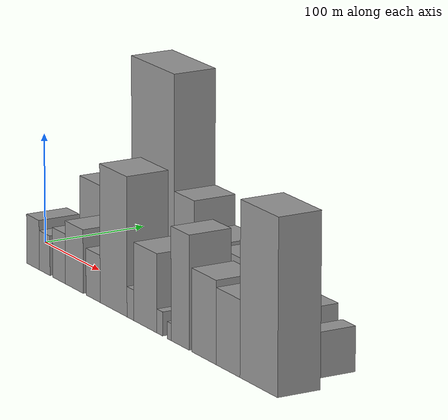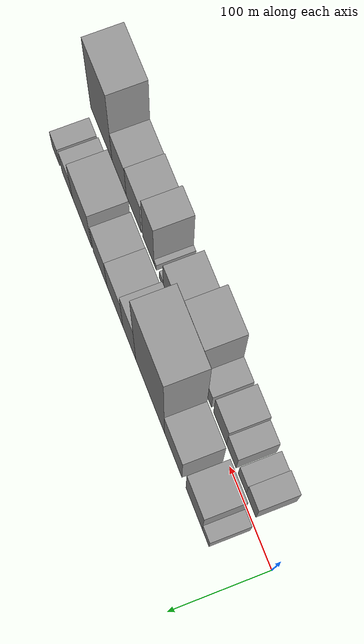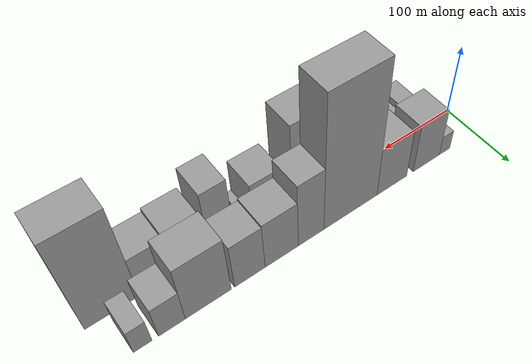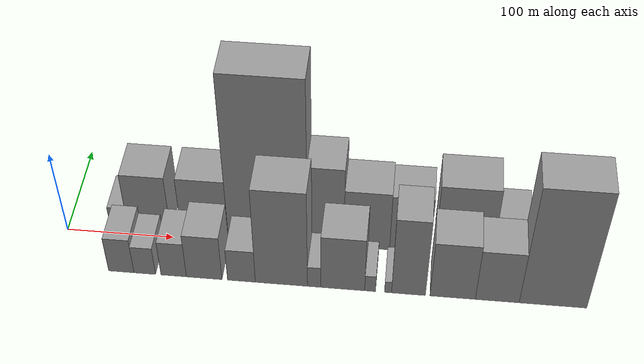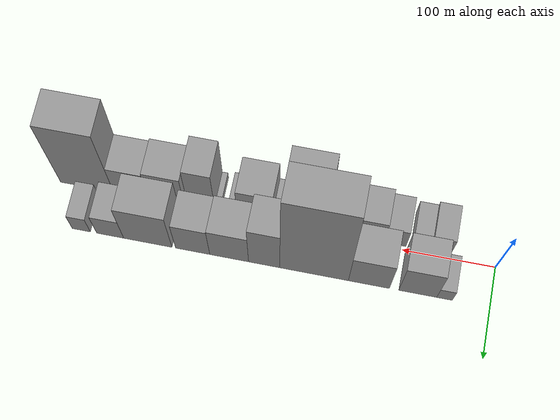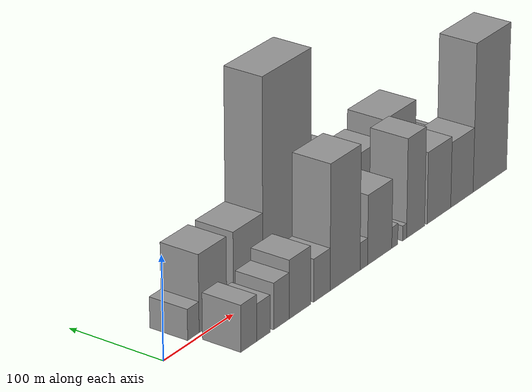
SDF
<sdf version="1.6">
 <world name="default">
  <scene>
   <sky><clouds><speed>12</speed></clouds></sky>
   <ambient>0.4 0.4 0.4 1</ambient>
   <background>0.7 0.7 0.7 1</background>
   <shadows>1</shadows>
  </scene>
  <gravity>0 0 -9.8066</gravity>
  <magnetic_field>6e-06 2.3e-05 -4.2e-05</magnetic_field>
  <physics default="0" name="default_physics" type="ode">
   <ode>
    <solver>
     <type>quick</type>
     <iters>10</iters>
     <sor>1.0</sor>
     <use_dynamic_moi_rescaling>0</use_dynamic_moi_rescaling>
    </solver>
    <constraints>
     <cfm>0</cfm>
     <erp>0.2</erp>
     <contact_max_correcting_vel>100</contact_max_correcting_vel>
     <contact_surface_layer>0.001</contact_surface_layer>
    </constraints>
   </ode>
   <max_step_size>0.004</max_step_size>
   <real_time_factor>1</real_time_factor>
   <real_time_update_rate>250</real_time_update_rate>
  </physics>
  <light name="sun" type="directional">
   <pose>0 0 10 0 0 0</pose>
   <diffuse>0.8 0.8 0.8 1</diffuse>
   <specular>0.2 0.2 0.2 1</specular>
   <attenuation>
    <range>1000</range>
    <constant>0.9</constant>
    <linear>0.01</linear>
    <quadratic>0.001</quadratic>
   </attenuation>
   <direction>-0.5 0.1 -0.9</direction>
  </light>
  <model name="building_1">
   <static>1</static>
   <pose>48.2652 24.5000 0 0.000000 0.000000 1.570796</pose>
   <link name="link">
    <pose>0 0 15.00 0 0 0</pose>
    <collision name="collision"><geometry><box><size>40.0000 16.5304 30.0000</size></box></geometry></collision>
    <visual name="visual">
     <cast_shadows>0</cast_shadows>
     <geometry><box><size>40.0000 16.5304 30.0000</size></box></geometry>
     <material>
      <script>
       <uri>model://grey_wall/materials/scripts</uri>
       <uri>model://grey_wall/materials/textures</uri>
       <name>vrc/grey_wall</name>
      </script>
     </material>
    </visual>
   </link>
  </model>
  <model name="building_2">
   <static>1</static>
   <pose>76.6512 24.5000 0 0.000000 0.000000 1.570796</pose>
   <link name="link">
    <pose>0 0 37.50 0 0 0</pose>
    <collision name="collision"><geometry><box><size>40.0000 40.2416 75.0000</size></box></geometry></collision>
    <visual name="visual">
     <cast_shadows>0</cast_shadows>
     <geometry><box><size>40.0000 40.2416 75.0000</size></box></geometry>
     <material>
      <script>
       <uri>model://grey_wall/materials/scripts</uri>
       <uri>model://grey_wall/materials/textures</uri>
       <name>vrc/grey_wall</name>
      </script>
     </material>
    </visual>
   </link>
  </model>
  <model name="building_3">
   <static>1</static>
   <pose>128.6955 24.5000 0 0.000000 0.000000 1.570796</pose>
   <link name="link">
    <pose>0 0 37.50 0 0 0</pose>
    <collision name="collision"><geometry><box><size>40.0000 43.8471 75.0000</size></box></geometry></collision>
    <visual name="visual">
     <cast_shadows>0</cast_shadows>
     <geometry><box><size>40.0000 43.8471 75.0000</size></box></geometry>
     <material>
      <script>
       <uri>model://grey_wall/materials/scripts</uri>
       <uri>model://grey_wall/materials/textures</uri>
       <name>vrc/grey_wall</name>
      </script>
     </material>
    </visual>
   </link>
  </model>
  <model name="building_4">
   <static>1</static>
   <pose>187.5237 24.5000 0 0.000000 0.000000 1.570796</pose>
   <link name="link">
    <pose>0 0 102.00 0 0 0</pose>
    <collision name="collision"><geometry><box><size>40.0000 73.8092 204.0000</size></box></geometry></collision>
    <visual name="visual">
     <cast_shadows>0</cast_shadows>
     <geometry><box><size>40.0000 73.8092 204.0000</size></box></geometry>
     <material>
      <script>
       <uri>model://grey_wall/materials/scripts</uri>
       <uri>model://grey_wall/materials/textures</uri>
       <name>vrc/grey_wall</name>
      </script>
     </material>
    </visual>
   </link>
  </model>
  <model name="building_5">
   <static>1</static>
   <pose>241.2174 24.5000 0 0.000000 0.000000 1.570796</pose>
   <link name="link">
    <pose>0 0 51.00 0 0 0</pose>
    <collision name="collision"><geometry><box><size>40.0000 33.5781 102.0000</size></box></geometry></collision>
    <visual name="visual">
     <cast_shadows>0</cast_shadows>
     <geometry><box><size>40.0000 33.5781 102.0000</size></box></geometry>
     <material>
      <script>
       <uri>model://grey_wall/materials/scripts</uri>
       <uri>model://grey_wall/materials/textures</uri>
       <name>vrc/grey_wall</name>
      </script>
     </material>
    </visual>
   </link>
  </model>
  <model name="building_6">
   <static>1</static>
   <pose>279.0360 24.5000 0 0.000000 0.000000 1.570796</pose>
   <link name="link">
    <pose>0 0 37.50 0 0 0</pose>
    <collision name="collision"><geometry><box><size>40.0000 42.0592 75.0000</size></box></geometry></collision>
    <visual name="visual">
     <cast_shadows>0</cast_shadows>
     <geometry><box><size>40.0000 42.0592 75.0000</size></box></geometry>
     <material>
      <script>
       <uri>model://grey_wall/materials/scripts</uri>
       <uri>model://grey_wall/materials/textures</uri>
       <name>vrc/grey_wall</name>
      </script>
     </material>
    </visual>
   </link>
  </model>
  <model name="building_7">
   <static>1</static>
   <pose>318.6324 24.5000 0 0.000000 0.000000 1.570796</pose>
   <link name="link">
    <pose>0 0 36.00 0 0 0</pose>
    <collision name="collision"><geometry><box><size>40.0000 37.1335 72.0000</size></box></geometry></collision>
    <visual name="visual">
     <cast_shadows>0</cast_shadows>
     <geometry><box><size>40.0000 37.1335 72.0000</size></box></geometry>
     <material>
      <script>
       <uri>model://grey_wall/materials/scripts</uri>
       <uri>model://grey_wall/materials/textures</uri>
       <name>vrc/grey_wall</name>
      </script>
     </material>
    </visual>
   </link>
  </model>
  <model name="building_8">
   <static>1</static>
   <pose>367.6687 24.5000 0 0.000000 0.000000 1.570796</pose>
   <link name="link">
    <pose>0 0 45.00 0 0 0</pose>
    <collision name="collision"><geometry><box><size>40.0000 52.9391 90.0000</size></box></geometry></collision>
    <visual name="visual">
     <cast_shadows>0</cast_shadows>
     <geometry><box><size>40.0000 52.9391 90.0000</size></box></geometry>
     <material>
      <script>
       <uri>model://grey_wall/materials/scripts</uri>
       <uri>model://grey_wall/materials/textures</uri>
       <name>vrc/grey_wall</name>
      </script>
     </material>
    </visual>
   </link>
  </model>
  <model name="building_9">
   <static>1</static>
   <pose>408.9546 24.5000 0 0.000000 0.000000 1.570796</pose>
   <link name="link">
    <pose>0 0 25.50 0 0 0</pose>
    <collision name="collision"><geometry><box><size>40.0000 29.6328 51.0000</size></box></geometry></collision>
    <visual name="visual">
     <cast_shadows>0</cast_shadows>
     <geometry><box><size>40.0000 29.6328 51.0000</size></box></geometry>
     <material>
      <script>
       <uri>model://grey_wall/materials/scripts</uri>
       <uri>model://grey_wall/materials/textures</uri>
       <name>vrc/grey_wall</name>
      </script>
     </material>
    </visual>
   </link>
  </model>
  <model name="building_10">
   <static>1</static>
   <pose>440.7188 24.5000 0 0.000000 0.000000 1.570796</pose>
   <link name="link">
    <pose>0 0 19.50 0 0 0</pose>
    <collision name="collision"><geometry><box><size>40.0000 19.8955 39.0000</size></box></geometry></collision>
    <visual name="visual">
     <cast_shadows>0</cast_shadows>
     <geometry><box><size>40.0000 19.8955 39.0000</size></box></geometry>
     <material>
      <script>
       <uri>model://grey_wall/materials/scripts</uri>
       <uri>model://grey_wall/materials/textures</uri>
       <name>vrc/grey_wall</name>
      </script>
     </material>
    </visual>
   </link>
  </model>
  <model name="building_11">
   <static>1</static>
   <pose>60.6100 -24.5000 0 0.000000 0.000000 1.570796</pose>
   <link name="link">
    <pose>0 0 22.50 0 0 0</pose>
    <collision name="collision"><geometry><box><size>40.0000 23.2200 45.0000</size></box></geometry></collision>
    <visual name="visual">
     <cast_shadows>0</cast_shadows>
     <geometry><box><size>40.0000 23.2200 45.0000</size></box></geometry>
     <material>
      <script>
       <uri>model://grey_wall/materials/scripts</uri>
       <uri>model://grey_wall/materials/textures</uri>
       <name>vrc/grey_wall</name>
      </script>
     </material>
    </visual>
   </link>
  </model>
  <model name="building_12">
   <static>1</static>
   <pose>82.0896 -24.5000 0 0.000000 0.000000 1.570796</pose>
   <link name="link">
    <pose>0 0 18.00 0 0 0</pose>
    <collision name="collision"><geometry><box><size>40.0000 19.7393 36.0000</size></box></geometry></collision>
    <visual name="visual">
     <cast_shadows>0</cast_shadows>
     <geometry><box><size>40.0000 19.7393 36.0000</size></box></geometry>
     <material>
      <script>
       <uri>model://grey_wall/materials/scripts</uri>
       <uri>model://grey_wall/materials/textures</uri>
       <name>vrc/grey_wall</name>
      </script>
     </material>
    </visual>
   </link>
  </model>
  <model name="building_13">
   <static>1</static>
   <pose>108.5692 -24.5000 0 0.000000 0.000000 1.570796</pose>
   <link name="link">
    <pose>0 0 22.50 0 0 0</pose>
    <collision name="collision"><geometry><box><size>40.0000 23.2200 45.0000</size></box></geometry></collision>
    <visual name="visual">
     <cast_shadows>0</cast_shadows>
     <geometry><box><size>40.0000 23.2200 45.0000</size></box></geometry>
     <material>
      <script>
       <uri>model://grey_wall/materials/scripts</uri>
       <uri>model://grey_wall/materials/textures</uri>
       <name>vrc/grey_wall</name>
      </script>
     </material>
    </visual>
   </link>
  </model>
  <model name="building_14">
   <static>1</static>
   <pose>136.3193 -24.5000 0 0.000000 0.000000 1.570796</pose>
   <link name="link">
    <pose>0 0 28.50 0 0 0</pose>
    <collision name="collision"><geometry><box><size>40.0000 32.2802 57.0000</size></box></geometry></collision>
    <visual name="visual">
     <cast_shadows>0</cast_shadows>
     <geometry><box><size>40.0000 32.2802 57.0000</size></box></geometry>
     <material>
      <script>
       <uri>model://grey_wall/materials/scripts</uri>
       <uri>model://grey_wall/materials/textures</uri>
       <name>vrc/grey_wall</name>
      </script>
     </material>
    </visual>
   </link>
  </model>
  <model name="building_15">
   <static>1</static>
   <pose>170.0392 -24.5000 0 0.000000 0.000000 1.570796</pose>
   <link name="link">
    <pose>0 0 21.00 0 0 0</pose>
    <collision name="collision"><geometry><box><size>40.0000 25.1597 42.0000</size></box></geometry></collision>
    <visual name="visual">
     <cast_shadows>0</cast_shadows>
     <geometry><box><size>40.0000 25.1597 42.0000</size></box></geometry>
     <material>
      <script>
       <uri>model://grey_wall/materials/scripts</uri>
       <uri>model://grey_wall/materials/textures</uri>
       <name>vrc/grey_wall</name>
      </script>
     </material>
    </visual>
   </link>
  </model>
  <model name="building_16">
   <static>1</static>
   <pose>206.1173 -24.5000 0 0.000000 0.000000 1.570796</pose>
   <link name="link">
    <pose>0 0 61.50 0 0 0</pose>
    <collision name="collision"><geometry><box><size>40.0000 46.9966 123.0000</size></box></geometry></collision>
    <visual name="visual">
     <cast_shadows>0</cast_shadows>
     <geometry><box><size>40.0000 46.9966 123.0000</size></box></geometry>
     <material>
      <script>
       <uri>model://grey_wall/materials/scripts</uri>
       <uri>model://grey_wall/materials/textures</uri>
       <name>vrc/grey_wall</name>
      </script>
     </material>
    </visual>
   </link>
  </model>
  <model name="building_17">
   <static>1</static>
   <pose>235.5361 -24.5000 0 0.000000 0.000000 1.570796</pose>
   <link name="link">
    <pose>0 0 13.50 0 0 0</pose>
    <collision name="collision"><geometry><box><size>40.0000 11.8410 27.0000</size></box></geometry></collision>
    <visual name="visual">
     <cast_shadows>0</cast_shadows>
     <geometry><box><size>40.0000 11.8410 27.0000</size></box></geometry>
     <material>
      <script>
       <uri>model://grey_wall/materials/scripts</uri>
       <uri>model://grey_wall/materials/textures</uri>
       <name>vrc/grey_wall</name>
      </script>
     </material>
    </visual>
   </link>
  </model>
  <model name="building_18">
   <static>1</static>
   <pose>261.0873 -24.5000 0 0.000000 0.000000 1.570796</pose>
   <link name="link">
    <pose>0 0 34.50 0 0 0</pose>
    <collision name="collision"><geometry><box><size>40.0000 39.2613 69.0000</size></box></geometry></collision>
    <visual name="visual">
     <cast_shadows>0</cast_shadows>
     <geometry><box><size>40.0000 39.2613 69.0000</size></box></geometry>
     <material>
      <script>
       <uri>model://grey_wall/materials/scripts</uri>
       <uri>model://grey_wall/materials/textures</uri>
       <name>vrc/grey_wall</name>
      </script>
     </material>
    </visual>
   </link>
  </model>
  <model name="building_19">
   <static>1</static>
   <pose>285.5718 -24.5000 0 0.000000 0.000000 1.570796</pose>
   <link name="link">
    <pose>0 0 10.50 0 0 0</pose>
    <collision name="collision"><geometry><box><size>40.0000 9.7077 21.0000</size></box></geometry></collision>
    <visual name="visual">
     <cast_shadows>0</cast_shadows>
     <geometry><box><size>40.0000 9.7077 21.0000</size></box></geometry>
     <material>
      <script>
       <uri>model://grey_wall/materials/scripts</uri>
       <uri>model://grey_wall/materials/textures</uri>
       <name>vrc/grey_wall</name>
      </script>
     </material>
    </visual>
   </link>
  </model>
  <model name="building_20">
   <static>1</static>
   <pose>301.5697 -24.5000 0 0.000000 0.000000 1.570796</pose>
   <link name="link">
    <pose>0 0 7.50 0 0 0</pose>
    <collision name="collision"><geometry><box><size>40.0000 6.2881 15.0000</size></box></geometry></collision>
    <visual name="visual">
     <cast_shadows>0</cast_shadows>
     <geometry><box><size>40.0000 6.2881 15.0000</size></box></geometry>
     <material>
      <script>
       <uri>model://grey_wall/materials/scripts</uri>
       <uri>model://grey_wall/materials/textures</uri>
       <name>vrc/grey_wall</name>
      </script>
     </material>
    </visual>
   </link>
  </model>
  <model name="building_21">
   <static>1</static>
   <pose>319.7406 -24.5000 0 0.000000 0.000000 1.570796</pose>
   <link name="link">
    <pose>0 0 49.50 0 0 0</pose>
    <collision name="collision"><geometry><box><size>40.0000 30.0538 99.0000</size></box></geometry></collision>
    <visual name="visual">
     <cast_shadows>0</cast_shadows>
     <geometry><box><size>40.0000 30.0538 99.0000</size></box></geometry>
     <material>
      <script>
       <uri>model://grey_wall/materials/scripts</uri>
       <uri>model://grey_wall/materials/textures</uri>
       <name>vrc/grey_wall</name>
      </script>
     </material>
    </visual>
   </link>
  </model>
  <model name="building_22">
   <static>1</static>
   <pose>358.7888 -24.5000 0 0.000000 0.000000 1.570796</pose>
   <link name="link">
    <pose>0 0 36.00 0 0 0</pose>
    <collision name="collision"><geometry><box><size>40.0000 40.0427 72.0000</size></box></geometry></collision>
    <visual name="visual">
     <cast_shadows>0</cast_shadows>
     <geometry><box><size>40.0000 40.0427 72.0000</size></box></geometry>
     <material>
      <script>
       <uri>model://grey_wall/materials/scripts</uri>
       <uri>model://grey_wall/materials/textures</uri>
       <name>vrc/grey_wall</name>
      </script>
     </material>
    </visual>
   </link>
  </model>
  <model name="building_23">
   <static>1</static>
   <pose>398.0863 -24.5000 0 0.000000 0.000000 1.570796</pose>
   <link name="link">
    <pose>0 0 33.00 0 0 0</pose>
    <collision name="collision"><geometry><box><size>40.0000 38.5523 66.0000</size></box></geometry></collision>
    <visual name="visual">
     <cast_shadows>0</cast_shadows>
     <geometry><box><size>40.0000 38.5523 66.0000</size></box></geometry>
     <material>
      <script>
       <uri>model://grey_wall/materials/scripts</uri>
       <uri>model://grey_wall/materials/textures</uri>
       <name>vrc/grey_wall</name>
      </script>
     </material>
    </visual>
   </link>
  </model>
  <model name="building_24">
   <static>1</static>
   <pose>446.8894 -24.5000 0 0.000000 0.000000 1.570796</pose>
   <link name="link">
    <pose>0 0 75.00 0 0 0</pose>
    <collision name="collision"><geometry><box><size>40.0000 59.0541 150.0000</size></box></geometry></collision>
    <visual name="visual">
     <cast_shadows>0</cast_shadows>
     <geometry><box><size>40.0000 59.0541 150.0000</size></box></geometry>
     <material>
      <script>
       <uri>model://grey_wall/materials/scripts</uri>
       <uri>model://grey_wall/materials/textures</uri>
       <name>vrc/grey_wall</name>
      </script>
     </material>
    </visual>
   </link>
  </model>
 </world>
</sdf>
